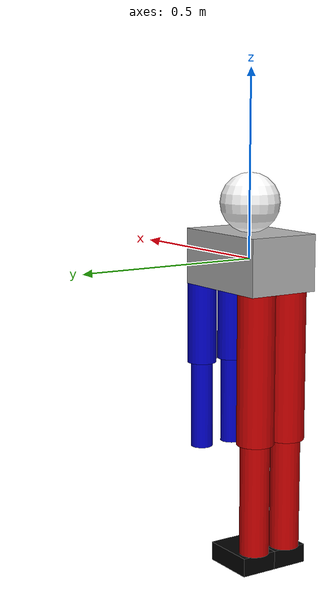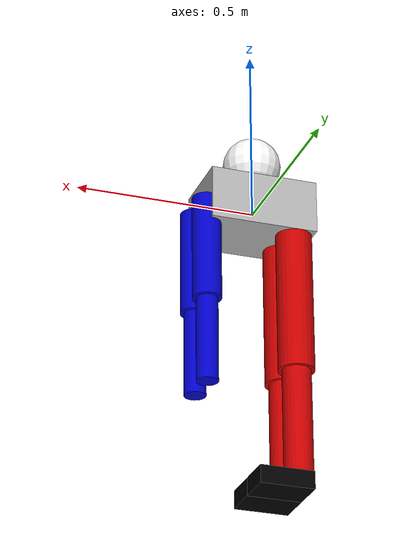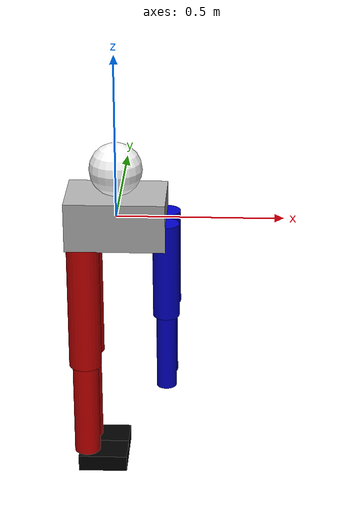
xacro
<?xml version="1.0"?>
<robot name="humanoid_robot" xmlns:xacro="http://www.ros.org/wiki/xacro">

  <!-- Include other xacro files -->
  <xacro:include filename="humanoid_constants.xacro"/>
  <xacro:include filename="humanoid_materials.xacro"/>

  <!-- Base Link -->
  <link name="base_link">
    <visual>
      <origin xyz="0 0 0" rpy="0 0 0"/>
      <geometry>
        <box size="0.3 0.2 0.15"/>
      </geometry>
      <material name="light_grey"/>
    </visual>
    <collision>
      <origin xyz="0 0 0" rpy="0 0 0"/>
      <geometry>
        <box size="0.3 0.2 0.15"/>
      </geometry>
    </collision>
    <inertial>
      <mass value="5.0"/>
      <origin xyz="0 0 0" rpy="0 0 0"/>
      <inertia ixx="0.1" ixy="0.0" ixz="0.0" iyy="0.1" iyz="0.0" izz="0.1"/>
    </inertial>
  </link>

  <!-- Head -->
  <joint name="head_joint" type="fixed">
    <parent link="base_link"/>
    <child link="head"/>
    <origin xyz="0.0 0.0 0.15" rpy="0 0 0"/>
  </joint>

  <link name="head">
    <visual>
      <origin xyz="0 0 0" rpy="0 0 0"/>
      <geometry>
        <sphere radius="0.08"/>
      </geometry>
      <material name="white"/>
    </visual>
    <collision>
      <origin xyz="0 0 0" rpy="0 0 0"/>
      <geometry>
        <sphere radius="0.08"/>
      </geometry>
    </collision>
    <inertial>
      <mass value="0.8"/>
      <origin xyz="0 0 0" rpy="0 0 0"/>
      <inertia ixx="0.002" ixy="0.0" ixz="0.0" iyy="0.002" iyz="0.0" izz="0.002"/>
    </inertial>
  </link>

  <!-- Left Arm -->
  <joint name="left_shoulder_joint" type="revolute">
    <parent link="base_link"/>
    <child link="left_upper_arm"/>
    <origin xyz="0.15 0.05 0.0" rpy="0 0 0"/>
    <axis xyz="0 1 0"/>
    <limit lower="-1.57" upper="1.57" effort="100" velocity="1.0"/>
  </joint>

  <link name="left_upper_arm">
    <visual>
      <origin xyz="0 0 -0.15" rpy="0 0 0"/>
      <geometry>
        <cylinder radius="0.04" length="0.3"/>
      </geometry>
      <material name="blue"/>
    </visual>
    <collision>
      <origin xyz="0 0 -0.15" rpy="0 0 0"/>
      <geometry>
        <cylinder radius="0.04" length="0.3"/>
      </geometry>
    </collision>
    <inertial>
      <mass value="0.5"/>
      <origin xyz="0 0 -0.15" rpy="0 0 0"/>
      <inertia ixx="0.005" ixy="0.0" ixz="0.0" iyy="0.005" iyz="0.0" izz="0.0005"/>
    </inertial>
  </link>

  <joint name="left_elbow_joint" type="revolute">
    <parent link="left_upper_arm"/>
    <child link="left_lower_arm"/>
    <origin xyz="0.0 0.0 -0.3" rpy="0 0 0"/>
    <axis xyz="0 1 0"/>
    <limit lower="-1.57" upper="1.57" effort="100" velocity="1.0"/>
  </joint>

  <link name="left_lower_arm">
    <visual>
      <origin xyz="0 0 -0.12" rpy="0 0 0"/>
      <geometry>
        <cylinder radius="0.03" length="0.24"/>
      </geometry>
      <material name="blue"/>
    </visual>
    <collision>
      <origin xyz="0 0 -0.12" rpy="0 0 0"/>
      <geometry>
        <cylinder radius="0.03" length="0.24"/>
      </geometry>
    </collision>
    <inertial>
      <mass value="0.3"/>
      <origin xyz="0 0 -0.12" rpy="0 0 0"/>
      <inertia ixx="0.002" ixy="0.0" ixz="0.0" iyy="0.002" iyz="0.0" izz="0.0002"/>
    </inertial>
  </link>

  <!-- Right Arm -->
  <joint name="right_shoulder_joint" type="revolute">
    <parent link="base_link"/>
    <child link="right_upper_arm"/>
    <origin xyz="0.15 -0.05 0.0" rpy="0 0 0"/>
    <axis xyz="0 1 0"/>
    <limit lower="-1.57" upper="1.57" effort="100" velocity="1.0"/>
  </joint>

  <link name="right_upper_arm">
    <visual>
      <origin xyz="0 0 -0.15" rpy="0 0 0"/>
      <geometry>
        <cylinder radius="0.04" length="0.3"/>
      </geometry>
      <material name="blue"/>
    </visual>
    <collision>
      <origin xyz="0 0 -0.15" rpy="0 0 0"/>
      <geometry>
        <cylinder radius="0.04" length="0.3"/>
      </geometry>
    </collision>
    <inertial>
      <mass value="0.5"/>
      <origin xyz="0 0 -0.15" rpy="0 0 0"/>
      <inertia ixx="0.005" ixy="0.0" ixz="0.0" iyy="0.005" iyz="0.0" izz="0.0005"/>
    </inertial>
  </link>

  <joint name="right_elbow_joint" type="revolute">
    <parent link="right_upper_arm"/>
    <child link="right_lower_arm"/>
    <origin xyz="0.0 0.0 -0.3" rpy="0 0 0"/>
    <axis xyz="0 1 0"/>
    <limit lower="-1.57" upper="1.57" effort="100" velocity="1.0"/>
  </joint>

  <link name="right_lower_arm">
    <visual>
      <origin xyz="0 0 -0.12" rpy="0 0 0"/>
      <geometry>
        <cylinder radius="0.03" length="0.24"/>
      </geometry>
      <material name="blue"/>
    </visual>
    <collision>
      <origin xyz="0 0 -0.12" rpy="0 0 0"/>
      <geometry>
        <cylinder radius="0.03" length="0.24"/>
      </geometry>
    </collision>
    <inertial>
      <mass value="0.3"/>
      <origin xyz="0 0 -0.12" rpy="0 0 0"/>
      <inertia ixx="0.002" ixy="0.0" ixz="0.0" iyy="0.002" iyz="0.0" izz="0.0002"/>
    </inertial>
  </link>

  <!-- Left Leg -->
  <joint name="left_hip_joint" type="revolute">
    <parent link="base_link"/>
    <child link="left_upper_leg"/>
    <origin xyz="-0.1 0.05 -0.075" rpy="0 0 0"/>
    <axis xyz="0 1 0"/>
    <limit lower="-1.57" upper="1.57" effort="100" velocity="1.0"/>
  </joint>

  <link name="left_upper_leg">
    <visual>
      <origin xyz="0 0 -0.2" rpy="0 0 0"/>
      <geometry>
        <cylinder radius="0.05" length="0.4"/>
      </geometry>
      <material name="red"/>
    </visual>
    <collision>
      <origin xyz="0 0 -0.2" rpy="0 0 0"/>
      <geometry>
        <cylinder radius="0.05" length="0.4"/>
      </geometry>
    </collision>
    <inertial>
      <mass value="1.0"/>
      <origin xyz="0 0 -0.2" rpy="0 0 0"/>
      <inertia ixx="0.015" ixy="0.0" ixz="0.0" iyy="0.015" iyz="0.0" izz="0.001"/>
    </inertial>
  </link>

  <joint name="left_knee_joint" type="revolute">
    <parent link="left_upper_leg"/>
    <child link="left_lower_leg"/>
    <origin xyz="0.0 0.0 -0.4" rpy="0 0 0"/>
    <axis xyz="0 1 0"/>
    <limit lower="-1.57" upper="1.57" effort="100" velocity="1.0"/>
  </joint>

  <link name="left_lower_leg">
    <visual>
      <origin xyz="0 0 -0.15" rpy="0 0 0"/>
      <geometry>
        <cylinder radius="0.04" length="0.3"/>
      </geometry>
      <material name="red"/>
    </visual>
    <collision>
      <origin xyz="0 0 -0.15" rpy="0 0 0"/>
      <geometry>
        <cylinder radius="0.04" length="0.3"/>
      </geometry>
    </collision>
    <inertial>
      <mass value="0.7"/>
      <origin xyz="0 0 -0.15" rpy="0 0 0"/>
      <inertia ixx="0.008" ixy="0.0" ixz="0.0" iyy="0.008" iyz="0.0" izz="0.0008"/>
    </inertial>
  </link>

  <joint name="left_foot_joint" type="fixed">
    <parent link="left_lower_leg"/>
    <child link="left_foot"/>
    <origin xyz="0.0 0.0 -0.3" rpy="0 0 0"/>
  </joint>

  <link name="left_foot">
    <visual>
      <origin xyz="0.05 0.0 -0.025" rpy="0 0 0"/>
      <geometry>
        <box size="0.15 0.1 0.05"/>
      </geometry>
      <material name="black"/>
    </visual>
    <collision>
      <origin xyz="0.05 0.0 -0.025" rpy="0 0 0"/>
      <geometry>
        <box size="0.15 0.1 0.05"/>
      </geometry>
    </collision>
    <inertial>
      <mass value="0.2"/>
      <origin xyz="0.05 0.0 -0.025" rpy="0 0 0"/>
      <inertia ixx="0.0002" ixy="0.0" ixz="0.0" iyy="0.0002" iyz="0.0" izz="0.0002"/>
    </inertial>
  </link>

  <!-- Right Leg -->
  <joint name="right_hip_joint" type="revolute">
    <parent link="base_link"/>
    <child link="right_upper_leg"/>
    <origin xyz="-0.1 -0.05 -0.075" rpy="0 0 0"/>
    <axis xyz="0 1 0"/>
    <limit lower="-1.57" upper="1.57" effort="100" velocity="1.0"/>
  </joint>

  <link name="right_upper_leg">
    <visual>
      <origin xyz="0 0 -0.2" rpy="0 0 0"/>
      <geometry>
        <cylinder radius="0.05" length="0.4"/>
      </geometry>
      <material name="red"/>
    </visual>
    <collision>
      <origin xyz="0 0 -0.2" rpy="0 0 0"/>
      <geometry>
        <cylinder radius="0.05" length="0.4"/>
      </geometry>
    </collision>
    <inertial>
      <mass value="1.0"/>
      <origin xyz="0 0 -0.2" rpy="0 0 0"/>
      <inertia ixx="0.015" ixy="0.0" ixz="0.0" iyy="0.015" iyz="0.0" izz="0.001"/>
    </inertial>
  </link>

  <joint name="right_knee_joint" type="revolute">
    <parent link="right_upper_leg"/>
    <child link="right_lower_leg"/>
    <origin xyz="0.0 0.0 -0.4" rpy="0 0 0"/>
    <axis xyz="0 1 0"/>
    <limit lower="-1.57" upper="1.57" effort="100" velocity="1.0"/>
  </joint>

  <link name="right_lower_leg">
    <visual>
      <origin xyz="0 0 -0.15" rpy="0 0 0"/>
      <geometry>
        <cylinder radius="0.04" length="0.3"/>
      </geometry>
      <material name="red"/>
    </visual>
    <collision>
      <origin xyz="0 0 -0.15" rpy="0 0 0"/>
      <geometry>
        <cylinder radius="0.04" length="0.3"/>
      </geometry>
    </collision>
    <inertial>
      <mass value="0.7"/>
      <origin xyz="0 0 -0.15" rpy="0 0 0"/>
      <inertia ixx="0.008" ixy="0.0" ixz="0.0" iyy="0.008" iyz="0.0" izz="0.0008"/>
    </inertial>
  </link>

  <joint name="right_foot_joint" type="fixed">
    <parent link="right_lower_leg"/>
    <child link="right_foot"/>
    <origin xyz="0.0 0.0 -0.3" rpy="0 0 0"/>
  </joint>

  <link name="right_foot">
    <visual>
      <origin xyz="0.05 0.0 -0.025" rpy="0 0 0"/>
      <geometry>
        <box size="0.15 0.1 0.05"/>
      </geometry>
      <material name="black"/>
    </visual>
    <collision>
      <origin xyz="0.05 0.0 -0.025" rpy="0 0 0"/>
      <geometry>
        <box size="0.15 0.1 0.05"/>
      </geometry>
    </collision>
    <inertial>
      <mass value="0.2"/>
      <origin xyz="0.05 0.0 -0.025" rpy="0 0 0"/>
      <inertia ixx="0.0002" ixy="0.0" ixz="0.0" iyy="0.0002" iyz="0.0" izz="0.0002"/>
    </inertial>
  </link>

  <!-- Sensors (IMU, Camera, etc.) -->
  <joint name="imu_joint" type="fixed">
    <parent link="base_link"/>
    <child link="imu_link"/>
    <origin xyz="0.05 0 0.05" rpy="0 0 0"/>
  </joint>

  <link name="imu_link">
    <inertial>
      <mass value="0.01"/>
      <origin xyz="0 0 0" rpy="0 0 0"/>
      <inertia ixx="0.0001" ixy="0" ixz="0" iyy="0.0001" iyz="0" izz="0.0001"/>
    </inertial>
  </link>

  <joint name="camera_joint" type="fixed">
    <parent link="head"/>
    <child link="camera_link"/>
    <origin xyz="0.05 0 0" rpy="0 0 0"/>
  </joint>

  <link name="camera_link">
    <inertial>
      <mass value="0.1"/>
      <origin xyz="0 0 0" rpy="0 0 0"/>
      <inertia ixx="0.001" ixy="0" ixz="0" iyy="0.001" iyz="0" izz="0.001"/>
    </inertial>
  </link>

</robot>

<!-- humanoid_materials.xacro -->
<robot xmlns:xacro="http://www.ros.org/wiki/xacro">

  <!-- Materials -->
  <material name="black">
    <color rgba="0.0 0.0 0.0 1.0"/>
  </material>

  <material name="blue">
    <color rgba="0.0 0.0 0.8 1.0"/>
  </material>

  <material name="green">
    <color rgba="0.0 0.8 0.0 1.0"/>
  </material>

  <material name="grey">
    <color rgba="0.5 0.5 0.5 1.0"/>
  </material>

  <material name="light_grey">
    <color rgba="0.7 0.7 0.7 1.0"/>
  </material>

  <material name="orange">
    <color rgba="${255/255} ${108/255} ${10/255} 1.0"/>
  </material>

  <material name="brown">
    <color rgba="${222/255} ${207/255} ${195/255} 1.0"/>
  </material>

  <material name="red">
    <color rgba="0.8 0.0 0.0 1.0"/>
  </material>

  <material name="white">
    <color rgba="1.0 1.0 1.0 1.0"/>
  </material>

  <material name="yellow">
    <color rgba="0.8 0.8 0.0 1.0"/>
  </material>

</robot>
